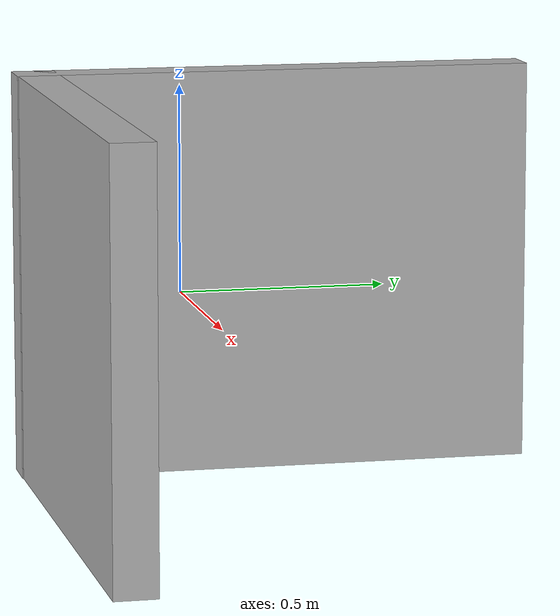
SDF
<?xml version='1.0'?>
<sdf version='1.6'>
  <model name='Wall90Degree'>
      <static>1</static>
    <link name='link_1'>
      <pose frame=''>-0.300585 0.29062 0 0 -0 0</pose>
      <inertial>
        <mass>0.132366</mass>
        <inertia>
          <ixx>0.0292074</ixx>
          <ixy>0</ixy>
          <ixz>0</ixz>
          <iyy>0.0111478</iyy>
          <iyz>0</iyz>
          <izz>0.0182942</izz>
        </inertia>
        <pose frame=''>0 0 0 0 -0 0</pose>
      </inertial>
      <visual name='visual'>
        <pose frame=''>0 0 0 0 -0 0</pose>
        <geometry>
          <box>
            <size>0.103113 1.2837 1</size>
          </box>
        </geometry>
        <material>
          <lighting>1</lighting>
          <script>
            <uri>model://Wall90Degree/materials/scripts/repeated.material</uri>
            <name>RepeatedTexture</name>
          </script>
          <ambient>0.3 0.3 0.3 1</ambient>
          <diffuse>0.7 0.7 0.7 1</diffuse>
          <specular>0.01 0.01 0.01 1</specular>
          <emissive>0 0 0 1</emissive>
        </material>
        <cast_shadows>1</cast_shadows>
        <transparency>0</transparency>
      </visual>
      <collision name='collision'>
        <laser_retro>0</laser_retro>
        <max_contacts>10</max_contacts>
        <pose frame=''>0 0 0 0 -0 0</pose>
        <geometry>
          <box>
            <size>0.103113 1.2837 1</size>
          </box>
        </geometry>
        <surface>
          <friction>
            <ode>
              <mu>1</mu>
              <mu2>1</mu2>
              <fdir1>0 0 0</fdir1>
              <slip1>0</slip1>
              <slip2>0</slip2>
            </ode>
            <torsional>
              <coefficient>1</coefficient>
              <patch_radius>0</patch_radius>
              <surface_radius>0</surface_radius>
              <use_patch_radius>1</use_patch_radius>
              <ode>
                <slip>0</slip>
              </ode>
            </torsional>
          </friction>
          <bounce>
            <restitution_coefficient>0</restitution_coefficient>
            <threshold>1e+06</threshold>
          </bounce>
          <contact>
            <collide_without_contact>0</collide_without_contact>
            <collide_without_contact_bitmask>1</collide_without_contact_bitmask>
            <collide_bitmask>1</collide_bitmask>
            <ode>
              <soft_cfm>0</soft_cfm>
              <soft_erp>0.2</soft_erp>
              <kp>1e+13</kp>
              <kd>1</kd>
              <max_vel>0.01</max_vel>
              <min_depth>0</min_depth>
            </ode>
            <bullet>
              <split_impulse>1</split_impulse>
              <split_impulse_penetration_threshold>-0.01</split_impulse_penetration_threshold>
              <soft_cfm>0</soft_cfm>
              <soft_erp>0.2</soft_erp>
              <kp>1e+13</kp>
              <kd>1</kd>
            </bullet>
          </contact>
        </surface>
      </collision>
    </link>
    <link name='link_1_clone'>
      <pose frame=''>0.300589 -0.290617 0 0 0 -1.5588</pose>
      <inertial>
        <mass>0.132366</mass>
        <inertia>
          <ixx>0.0292074</ixx>
          <ixy>0</ixy>
          <ixz>0</ixz>
          <iyy>0.0111478</iyy>
          <iyz>0</iyz>
          <izz>0.0182942</izz>
        </inertia>
        <pose frame=''>0 0 0 0 -0 0</pose>
      </inertial>
      <visual name='visual'>
        <pose frame=''>0 0 0 0 -0 0</pose>
        <geometry>
          <box>
            <size>0.103113 1.2837 1</size>
          </box>
        </geometry>
        <material>
          <lighting>1</lighting>
          <script>
              <uri>model://Wall90Degree/materials/scripts/repeated.material</uri>
            <name>RepeatedTexture</name>
          </script>
          <ambient>0.3 0.3 0.3 1</ambient>
          <diffuse>0.7 0.7 0.7 1</diffuse>
          <specular>0.01 0.01 0.01 1</specular>
          <emissive>0 0 0 1</emissive>
          <shader type='pixel'/>
        </material>
        <cast_shadows>1</cast_shadows>
        <transparency>0</transparency>
      </visual>
      <collision name='collision'>
        <laser_retro>0</laser_retro>
        <max_contacts>10</max_contacts>
        <pose frame=''>0 0 0 0 -0 0</pose>
        <geometry>
          <box>
            <size>0.103113 1.2837 1</size>
          </box>
        </geometry>
        <surface>
          <friction>
            <ode>
              <mu>1</mu>
              <mu2>1</mu2>
              <fdir1>0 0 0</fdir1>
              <slip1>0</slip1>
              <slip2>0</slip2>
            </ode>
            <torsional>
              <coefficient>1</coefficient>
              <patch_radius>0</patch_radius>
              <surface_radius>0</surface_radius>
              <use_patch_radius>1</use_patch_radius>
              <ode>
                <slip>0</slip>
              </ode>
            </torsional>
          </friction>
          <bounce>
            <restitution_coefficient>0</restitution_coefficient>
            <threshold>1e+06</threshold>
          </bounce>
          <contact>
            <collide_without_contact>0</collide_without_contact>
            <collide_without_contact_bitmask>1</collide_without_contact_bitmask>
            <collide_bitmask>1</collide_bitmask>
            <ode>
              <soft_cfm>0</soft_cfm>
              <soft_erp>0.2</soft_erp>
              <kp>1e+13</kp>
              <kd>1</kd>
              <max_vel>0.01</max_vel>
              <min_depth>0</min_depth>
            </ode>
            <bullet>
              <split_impulse>1</split_impulse>
              <split_impulse_penetration_threshold>-0.01</split_impulse_penetration_threshold>
              <soft_cfm>0</soft_cfm>
              <soft_erp>0.2</soft_erp>
              <kp>1e+13</kp>
              <kd>1</kd>
            </bullet>
          </contact>
        </surface>
      </collision>
    </link>
    <static>0</static>
    <allow_auto_disable>1</allow_auto_disable>
  </model>
</sdf>
